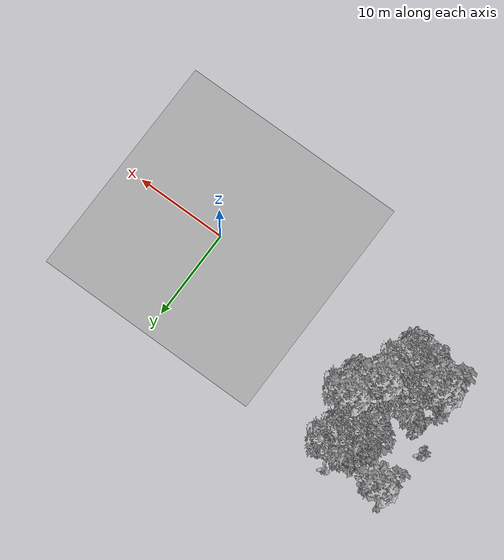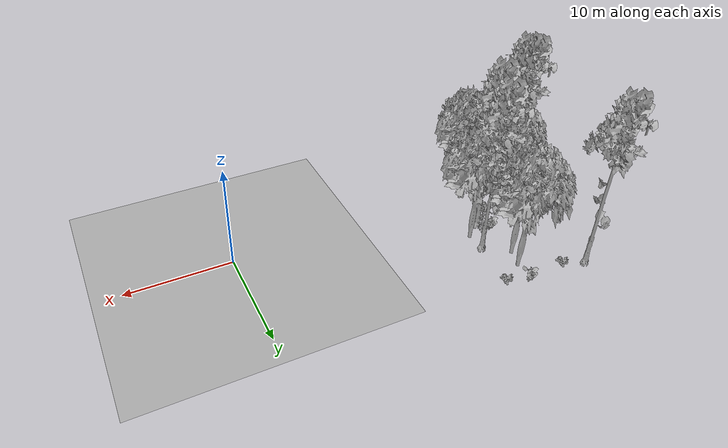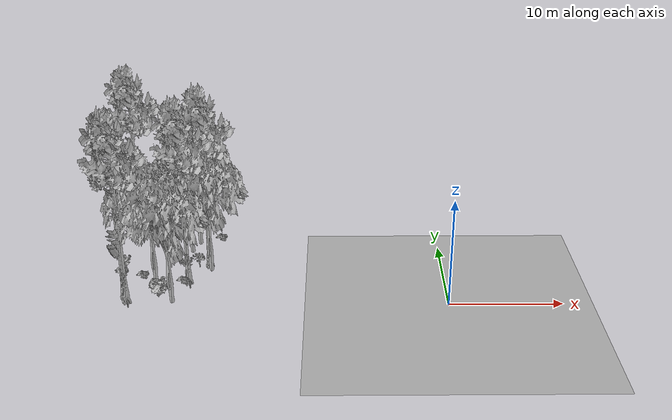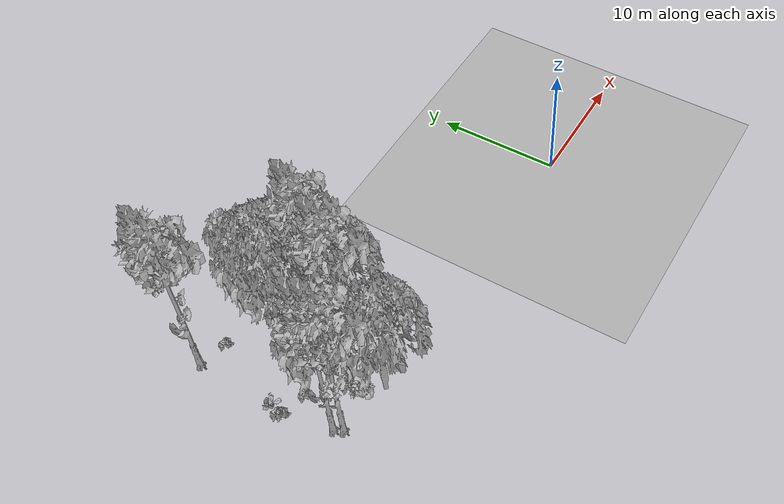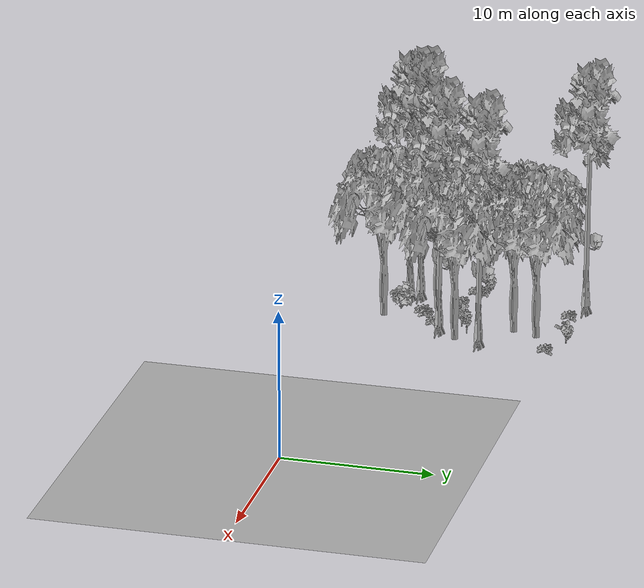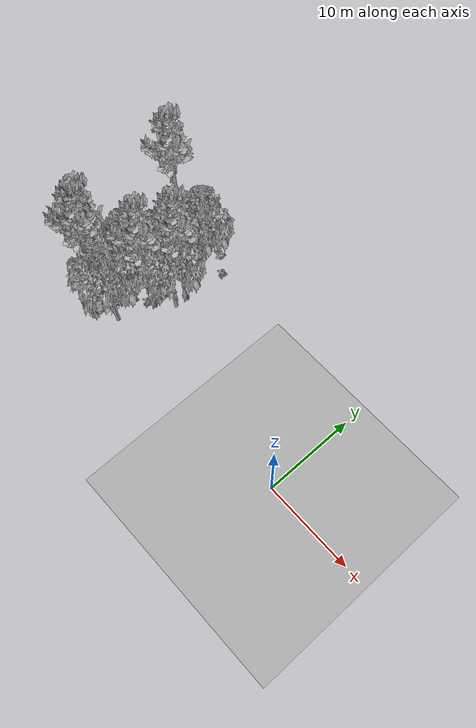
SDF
<sdf version="1.7">
 <world name="default">
  <model name="ground_plane">
   <static>1</static>
   <link name="link">
    <collision name="collision">
     <pose>-50 0 0 0 -0 0</pose>
     <geometry><plane><normal>0 0 1</normal><size>80 80</size></plane></geometry>
     <surface><contact><ode><min_depth>0.01</min_depth><max_vel>0</max_vel></ode></contact></surface>
    </collision>
    <visual name="grass">
     <cast_shadows>0</cast_shadows>
     <geometry>
      <mesh>
       <scale>0.46714285714285714 0.46714285714285714 0.1</scale>
       <uri>file://grass_plane/meshes/grass_plane.dae</uri>
      </mesh>
     </geometry>
    </visual>
   </link>
  </model>
  <model name="Tree 64">
   <static>1</static>
   <pose>-21.780512733870665 7.6131162719241985 0 1.57079 -0 0</pose>
   <link name="link">
    <collision name="collision">
     <geometry><mesh><scale>3.5 5 3.5</scale><uri>model://tree_9/meshes/tree_9.obj</uri></mesh></geometry>
    </collision>
    <visual name="visual">
     <geometry><mesh><scale>3.5 5 3.5</scale><uri>model://tree_9/meshes/tree_9.obj</uri></mesh></geometry>
    </visual>
   </link>
  </model>
  <model name="Tree 87">
   <static>1</static>
   <pose>-21.513346291556587 6.068187937286254 0 1.57079 -0 0</pose>
   <link name="link">
    <collision name="collision">
     <geometry><mesh><scale>3.5 5 3.5</scale><uri>model://tree_2/meshes/tree_2.obj</uri></mesh></geometry>
    </collision>
    <visual name="visual">
     <geometry><mesh><scale>3.5 5 3.5</scale><uri>model://tree_2/meshes/tree_2.obj</uri></mesh></geometry>
    </visual>
   </link>
  </model>
  <model name="Tree 123">
   <static>1</static>
   <pose>-23.728502033713404 9.547516275521211 0 1.57079 -0 0</pose>
   <link name="link">
    <collision name="collision">
     <geometry><mesh><scale>3.5 5 3.5</scale><uri>model://tree_2/meshes/tree_2.obj</uri></mesh></geometry>
    </collision>
    <visual name="visual">
     <geometry><mesh><scale>3.5 5 3.5</scale><uri>model://tree_2/meshes/tree_2.obj</uri></mesh></geometry>
    </visual>
   </link>
  </model>
  <model name="Tree 244">
   <static>1</static>
   <pose>-26.276816841650913 3.7522104943308676 0 1.57079 -0 0</pose>
   <link name="link">
    <collision name="collision">
     <geometry><mesh><scale>3.5 5 3.5</scale><uri>model://tree_2/meshes/tree_2.obj</uri></mesh></geometry>
    </collision>
    <visual name="visual">
     <geometry><mesh><scale>3.5 5 3.5</scale><uri>model://tree_2/meshes/tree_2.obj</uri></mesh></geometry>
    </visual>
   </link>
  </model>
  <model name="Tree 312">
   <static>1</static>
   <pose>-23.181691910828704 11.193092214187246 0 1.57079 -0 0</pose>
   <link name="link">
    <collision name="collision">
     <geometry><mesh><scale>3.5 5 3.5</scale><uri>model://tree_2/meshes/tree_2.obj</uri></mesh></geometry>
    </collision>
    <visual name="visual">
     <geometry><mesh><scale>3.5 5 3.5</scale><uri>model://tree_2/meshes/tree_2.obj</uri></mesh></geometry>
    </visual>
   </link>
  </model>
  <model name="Tree 330">
   <static>1</static>
   <pose>-28.43850447360282 1.3061709716874859 0 1.57079 -0 0</pose>
   <link name="link">
    <collision name="collision">
     <geometry><mesh><scale>3.5 5 3.5</scale><uri>model://tree_9/meshes/tree_9.obj</uri></mesh></geometry>
    </collision>
    <visual name="visual">
     <geometry><mesh><scale>3.5 5 3.5</scale><uri>model://tree_9/meshes/tree_9.obj</uri></mesh></geometry>
    </visual>
   </link>
  </model>
  <model name="Tree 340">
   <static>1</static>
   <pose>-23.365646292553663 4.543437493664719 0 1.57079 -0 0</pose>
   <link name="link">
    <collision name="collision">
     <geometry><mesh><scale>3.5 5 3.5</scale><uri>model://tree_9/meshes/tree_9.obj</uri></mesh></geometry>
    </collision>
    <visual name="visual">
     <geometry><mesh><scale>3.5 5 3.5</scale><uri>model://tree_9/meshes/tree_9.obj</uri></mesh></geometry>
    </visual>
   </link>
  </model>
  <model name="Tree 402">
   <static>1</static>
   <pose>-24.351199262816387 0.5313378010739385 0 1.57079 -0 0</pose>
   <link name="link">
    <collision name="collision">
     <geometry><mesh><scale>3.5 5 3.5</scale><uri>model://tree_2/meshes/tree_2.obj</uri></mesh></geometry>
    </collision>
    <visual name="visual">
     <geometry><mesh><scale>3.5 5 3.5</scale><uri>model://tree_2/meshes/tree_2.obj</uri></mesh></geometry>
    </visual>
   </link>
  </model>
  <model name="Tree 421">
   <static>1</static>
   <pose>-29.19344282800035 13.222182726416392 0 1.57079 -0 0</pose>
   <link name="link">
    <collision name="collision">
     <geometry><mesh><scale>3.5 5 3.5</scale><uri>model://tree_9/meshes/tree_9.obj</uri></mesh></geometry>
    </collision>
    <visual name="visual">
     <geometry><mesh><scale>3.5 5 3.5</scale><uri>model://tree_9/meshes/tree_9.obj</uri></mesh></geometry>
    </visual>
   </link>
  </model>
  <model name="Tree 467">
   <static>1</static>
   <pose>-28.747071271146414 1.972617266733394 0 1.57079 -0 0</pose>
   <link name="link">
    <collision name="collision">
     <geometry><mesh><scale>3.5 5 3.5</scale><uri>model://tree_9/meshes/tree_9.obj</uri></mesh></geometry>
    </collision>
    <visual name="visual">
     <geometry><mesh><scale>3.5 5 3.5</scale><uri>model://tree_9/meshes/tree_9.obj</uri></mesh></geometry>
    </visual>
   </link>
  </model>
  <model name="Bush 17">
   <static>1</static>
   <pose>-27.08699768419695 12.554918269436179 0 1.57079 -0 0</pose>
   <link name="link">
    <collision name="collision">
     <geometry><mesh><scale>2 2 2</scale><uri>model://bush_2/meshes/bush_2.obj</uri></mesh></geometry>
     <surface><contact><collide_without_contact>false</collide_without_contact></contact></surface>
    </collision>
    <visual name="visual">
     <geometry><mesh><scale>2 2 2</scale><uri>model://bush_2/meshes/bush_2.obj</uri></mesh></geometry>
    </visual>
   </link>
  </model>
  <model name="Bush 45">
   <static>1</static>
   <pose>-29.502252641259354 6.523481518756348 0 1.57079 -0 0</pose>
   <link name="link">
    <collision name="collision">
     <geometry><mesh><scale>2 2 2</scale><uri>model://bush_0/meshes/bush_0.obj</uri></mesh></geometry>
     <surface><contact><collide_without_contact>false</collide_without_contact></contact></surface>
    </collision>
    <visual name="visual">
     <geometry><mesh><scale>2 2 2</scale><uri>model://bush_0/meshes/bush_0.obj</uri></mesh></geometry>
    </visual>
   </link>
  </model>
  <model name="Bush 62">
   <static>1</static>
   <pose>-25.632178314670817 2.8609221261263116 0 1.57079 -0 0</pose>
   <link name="link">
    <collision name="collision">
     <geometry><mesh><scale>2 2 2</scale><uri>model://bush_2/meshes/bush_2.obj</uri></mesh></geometry>
     <surface><contact><collide_without_contact>false</collide_without_contact></contact></surface>
    </collision>
    <visual name="visual">
     <geometry><mesh><scale>2 2 2</scale><uri>model://bush_2/meshes/bush_2.obj</uri></mesh></geometry>
    </visual>
   </link>
  </model>
  <model name="Bush 200">
   <static>1</static>
   <pose>-23.65428044189677 6.0591508174926645 0 1.57079 -0 0</pose>
   <link name="link">
    <collision name="collision">
     <geometry><mesh><scale>2 2 2</scale><uri>model://bush_0/meshes/bush_0.obj</uri></mesh></geometry>
     <surface><contact><collide_without_contact>false</collide_without_contact></contact></surface>
    </collision>
    <visual name="visual">
     <geometry><mesh><scale>2 2 2</scale><uri>model://bush_0/meshes/bush_0.obj</uri></mesh></geometry>
    </visual>
   </link>
  </model>
  <model name="Bush 206">
   <static>1</static>
   <pose>-25.114798248621234 3.2378224371882 0 1.57079 -0 0</pose>
   <link name="link">
    <collision name="collision">
     <geometry><mesh><scale>2 2 2</scale><uri>model://bush_2/meshes/bush_2.obj</uri></mesh></geometry>
     <surface><contact><collide_without_contact>false</collide_without_contact></contact></surface>
    </collision>
    <visual name="visual">
     <geometry><mesh><scale>2 2 2</scale><uri>model://bush_2/meshes/bush_2.obj</uri></mesh></geometry>
    </visual>
   </link>
  </model>
  <model name="Bush 280">
   <static>1</static>
   <pose>-29.77370303755256 5.911648234982543 0 1.57079 -0 0</pose>
   <link name="link">
    <collision name="collision">
     <geometry><mesh><scale>2 2 2</scale><uri>model://bush_2/meshes/bush_2.obj</uri></mesh></geometry>
     <surface><contact><collide_without_contact>false</collide_without_contact></contact></surface>
    </collision>
    <visual name="visual">
     <geometry><mesh><scale>2 2 2</scale><uri>model://bush_2/meshes/bush_2.obj</uri></mesh></geometry>
    </visual>
   </link>
  </model>
  <model name="Bush 339">
   <static>1</static>
   <pose>-22.577777404883545 6.636815565439356 0 1.57079 -0 0</pose>
   <link name="link">
    <collision name="collision">
     <geometry><mesh><scale>2 2 2</scale><uri>model://bush_5/meshes/bush_5.obj</uri></mesh></geometry>
     <surface><contact><collide_without_contact>false</collide_without_contact></contact></surface>
    </collision>
    <visual name="visual">
     <geometry><mesh><scale>2 2 2</scale><uri>model://bush_5/meshes/bush_5.obj</uri></mesh></geometry>
    </visual>
   </link>
  </model>
  <model name="Bush 429">
   <static>1</static>
   <pose>-21.15342619332451 12.271362846237366 0 1.57079 -0 0</pose>
   <link name="link">
    <collision name="collision">
     <geometry><mesh><scale>2 2 2</scale><uri>model://bush_2/meshes/bush_2.obj</uri></mesh></geometry>
     <surface><contact><collide_without_contact>false</collide_without_contact></contact></surface>
    </collision>
    <visual name="visual">
     <geometry><mesh><scale>2 2 2</scale><uri>model://bush_2/meshes/bush_2.obj</uri></mesh></geometry>
    </visual>
   </link>
  </model>
  <model name="Bush 460">
   <static>1</static>
   <pose>-25.605252159461685 1.4027827939265478 0 1.57079 -0 0</pose>
   <link name="link">
    <collision name="collision">
     <geometry><mesh><scale>2 2 2</scale><uri>model://bush_1/meshes/bush_1.obj</uri></mesh></geometry>
     <surface><contact><collide_without_contact>false</collide_without_contact></contact></surface>
    </collision>
    <visual name="visual">
     <geometry><mesh><scale>2 2 2</scale><uri>model://bush_1/meshes/bush_1.obj</uri></mesh></geometry>
    </visual>
   </link>
  </model>
  <model name="Bush 573">
   <static>1</static>
   <pose>-29.63815391755695 5.589977641918374 0 1.57079 -0 0</pose>
   <link name="link">
    <collision name="collision">
     <geometry><mesh><scale>2 2 2</scale><uri>model://bush_2/meshes/bush_2.obj</uri></mesh></geometry>
     <surface><contact><collide_without_contact>false</collide_without_contact></contact></surface>
    </collision>
    <visual name="visual">
     <geometry><mesh><scale>2 2 2</scale><uri>model://bush_2/meshes/bush_2.obj</uri></mesh></geometry>
    </visual>
   </link>
  </model>
  <model name="Bush 575">
   <static>1</static>
   <pose>-22.63466776640469 13.365181650807834 0 1.57079 -0 0</pose>
   <link name="link">
    <collision name="collision">
     <geometry><mesh><scale>2 2 2</scale><uri>model://bush_0/meshes/bush_0.obj</uri></mesh></geometry>
     <surface><contact><collide_without_contact>false</collide_without_contact></contact></surface>
    </collision>
    <visual name="visual">
     <geometry><mesh><scale>2 2 2</scale><uri>model://bush_0/meshes/bush_0.obj</uri></mesh></geometry>
    </visual>
   </link>
  </model>
  <model name="Bush 586">
   <static>1</static>
   <pose>-27.64732728234189 5.0782050223344655 0 1.57079 -0 0</pose>
   <link name="link">
    <collision name="collision">
     <geometry><mesh><scale>2 2 2</scale><uri>model://bush_2/meshes/bush_2.obj</uri></mesh></geometry>
     <surface><contact><collide_without_contact>false</collide_without_contact></contact></surface>
    </collision>
    <visual name="visual">
     <geometry><mesh><scale>2 2 2</scale><uri>model://bush_2/meshes/bush_2.obj</uri></mesh></geometry>
    </visual>
   </link>
  </model>
  <model name="Bush 606">
   <static>1</static>
   <pose>-23.8111681594755 4.076167182589558 0 1.57079 -0 0</pose>
   <link name="link">
    <collision name="collision">
     <geometry><mesh><scale>2 2 2</scale><uri>model://bush_2/meshes/bush_2.obj</uri></mesh></geometry>
     <surface><contact><collide_without_contact>false</collide_without_contact></contact></surface>
    </collision>
    <visual name="visual">
     <geometry><mesh><scale>2 2 2</scale><uri>model://bush_2/meshes/bush_2.obj</uri></mesh></geometry>
    </visual>
   </link>
  </model>
 </world>
</sdf>
